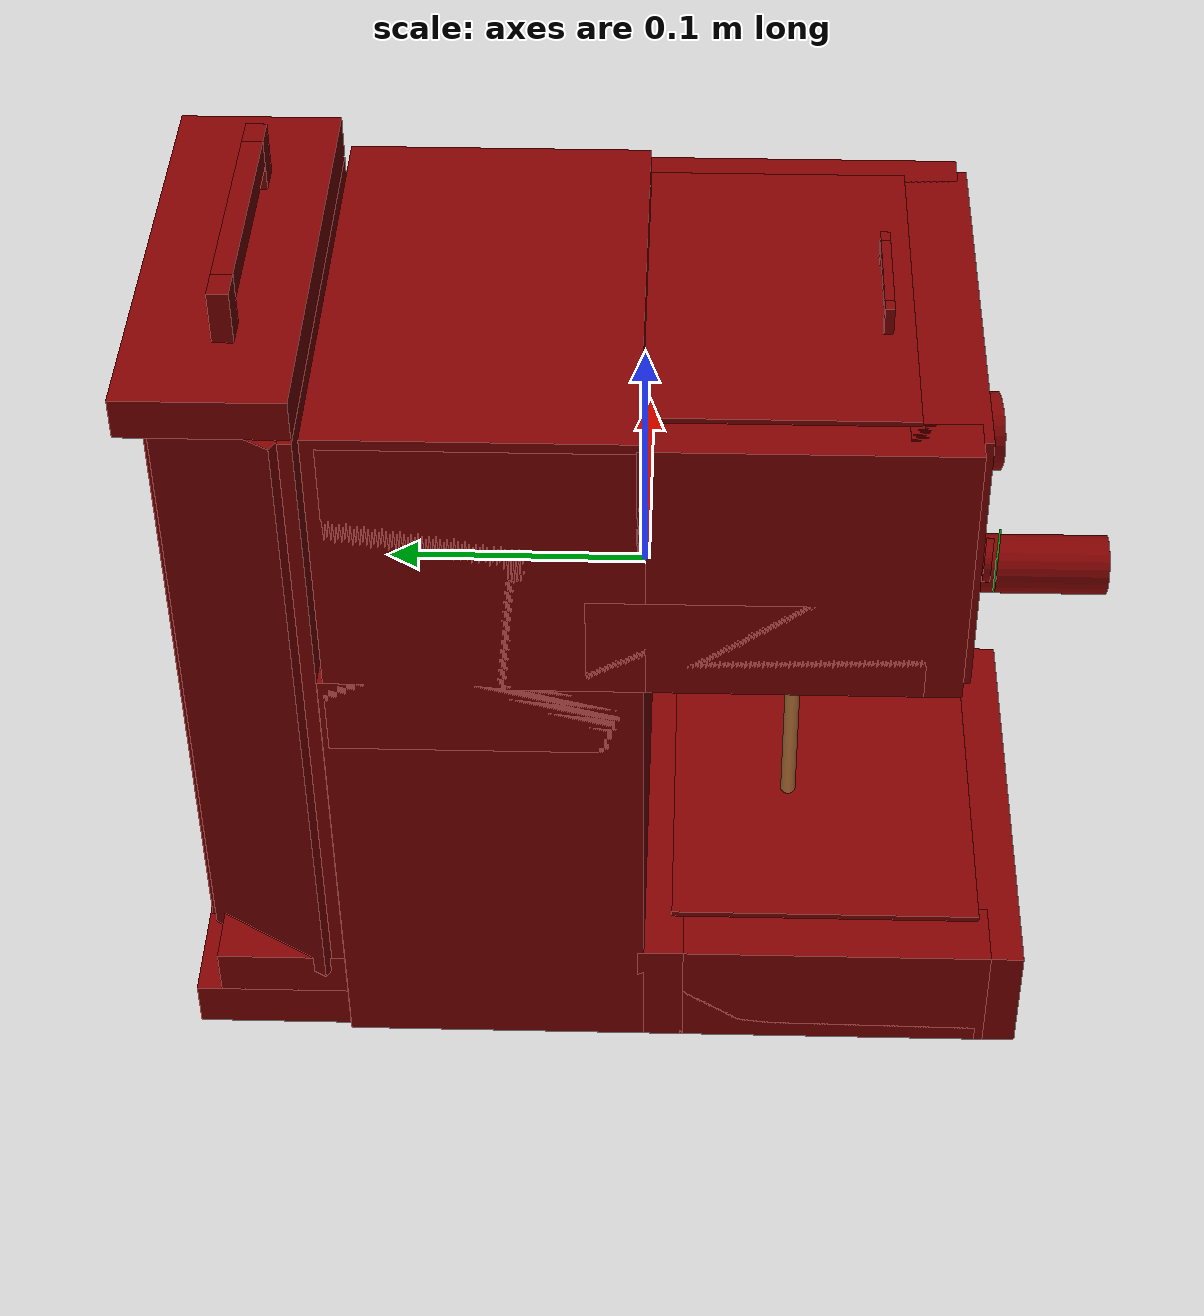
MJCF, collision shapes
<?xml version='1.0' encoding='UTF-8'?>
<mujoco model="model">
  <compiler angle="radian"/>
  <asset>
    <mesh file="visuals/Body001.obj" name="Body001_vis"/>
    <mesh file="visuals/Button001.obj" name="Button001_vis"/>
    <mesh file="visuals/Container001_Clear.obj" name="Container001_Clear_vis"/>
    <mesh file="visuals/Knob001.obj" name="Knob001_vis"/>
    <mesh file="visuals/Lever001.obj" name="Lever001_vis"/>
    <mesh file="visuals/Lid001.obj" name="Lid001_vis"/>
    <mesh file="visuals/Lid002.obj" name="Lid002_vis"/>
    <mesh file="visuals/Lid003.obj" name="Lid003_vis"/>
    <texture file="visuals/T_BC001.png" name="Body001_material" type="2d"/>
    <material name="Body001_material" rgba="1 1 1 1.0" texture="Body001_material" shininess="0.141421377658844" specular="0.3103448502657381"/>
    <texture file="visuals/T_BC001.png" name="Button001_material" type="2d"/>
    <material name="Button001_material" rgba="1 1 1 1.0" texture="Button001_material" shininess="0.141421377658844" specular="0.3103448502657381"/>
    <material name="Container001_Clear_material" rgba="0.5586143136024475 0.5586143136024475 0.5586143136024475 0.21962612867355347" shininess="0.5" specular="0.3103448502657381"/>
    <texture file="visuals/T_BC001.png" name="Lid003_material" type="2d"/>
    <material name="Lid003_material" rgba="1 1 1 1.0" texture="Lid003_material" shininess="0.141421377658844" specular="0.3103448502657381"/>
    <texture file="visuals/T_BC001.png" name="Knob001_material" type="2d"/>
    <material name="Knob001_material" rgba="1 1 1 1.0" texture="Knob001_material" shininess="0.141421377658844" specular="0.3103448502657381"/>
    <texture file="visuals/T_BC001.png" name="Lever001_material" type="2d"/>
    <material name="Lever001_material" rgba="1 1 1 1.0" texture="Lever001_material" shininess="0.141421377658844" specular="0.3103448502657381"/>
    <texture file="visuals/T_BC001.png" name="Lid001_material" type="2d"/>
    <material name="Lid001_material" rgba="1 1 1 1.0" texture="Lid001_material" shininess="0.141421377658844" specular="0.3103448502657381"/>
    <texture file="visuals/T_BC001.png" name="Lid002_material" type="2d"/>
    <material name="Lid002_material" rgba="1 1 1 1.0" texture="Lid002_material" shininess="0.141421377658844" specular="0.3103448502657381"/>
  </asset>
  <default>
    <default class="visual">
      <geom conaffinity="0" contype="0" group="1" type="mesh"/>
    </default>
    <default class="collision">
      <geom group="0" rgba="0.5 0 0 0.5"/>
    </default>
    <default class="spawn">
      <geom group="0" rgba="1 1 1 0.5" contype="0" conaffinity="0"/>
      <site group="0" rgba="1 1 1 0.5"/>
    </default>
    <default class="region">
      <geom group="1" conaffinity="0" contype="0" rgba="0 1 0 0"/>
    </default>
  </default>
  <worldbody>
    <body>
      <body name="object">
        <geom class="collision" type="box" pos="-0.05395617336034775 -0.12982571125030518 0.048479028046131134" size="0.00810594018548727 0.0003842163132503629 0.008105942979454994" quat="0.0690629631280899 0.0 0.0 0.9976122975349426" name="start_button" rgba="0.0 0.5 0 0.5"/>
        <site type="cylinder" rgba="0.8 0.5 0.25 1" size="0.003000000026077032 0.05620431527495384" pos="-0.008333668112754822 -0.05953395366668701 -0.06895400583744049" name="coffee_liquid"/>
        <site rgba="0 0 0 0" size="0.009999999776482582 0.009999999776482582" pos="-0.008333668112754822 -0.05953395366668701 -0.12103447318077087" name="receptacle_place_site"/>
        <geom mesh="Body001_vis" type="mesh" solimp="0.998 0.998 0.001" solref="0.001 1" density="100" friction="0.95 0.3 0.1" class="visual" material="Body001_material"/>
        <geom class="collision" type="box" pos="-0.008078295737504959 0.0570809580385685 0.06270235776901245" size="0.09015553444623947 0.05737150460481644 0.07254129648208618" quat="1.0 0.0 0.0 0.0"/>
        <geom class="collision" type="box" pos="-0.008078303188085556 0.057427313178777695 -0.07301076501607895" size="0.09015549719333649 0.05922892689704895 0.09584990888834" quat="1.0 0.0 0.0 0.0"/>
        <geom class="collision" type="box" pos="-0.00807831808924675 -0.008276864886283875 -0.1445942223072052" size="0.09015550464391708 0.008970573544502258 0.024266468361020088" quat="1.0 0.0 0.0 0.0"/>
        <geom class="collision" type="box" pos="-0.007551848888397217 0.14759129285812378 -0.15889960527420044" size="0.08831890672445297 0.030380483716726303 0.009669988416135311" quat="1.0 0.0 0.0 0.0"/>
        <geom class="collision" type="box" pos="-0.08936472237110138 -0.05779698118567467 0.07670687884092331" size="0.008869145065546036 0.05865433067083359 0.05551895499229431" quat="1.0 0.0 0.0 0.0"/>
        <geom class="collision" type="box" pos="0.07221220433712006 -0.05779698118567467 0.07670687884092331" size="0.009595606476068497 0.05865433067083359 0.05551895499229431" quat="1.0 0.0 0.0 0.0"/>
        <geom class="collision" type="box" pos="-0.008242957293987274 -0.10590178519487381 0.07670687884092331" size="0.08235571533441544 0.014058060012757778 0.05551895499229431" quat="1.0 0.0 0.0 0.0"/>
        <geom class="collision" type="box" pos="-0.008078329265117645 -0.04179186373949051 0.042540960013866425" size="0.09015551954507828 0.060859981924295425 0.021353036165237427" quat="1.0 0.0 0.0 0.0"/>
        <geom class="collision" type="box" pos="-0.00807831808924675 -0.1423206329345703 -0.1445941925048828" size="0.09015550464391708 0.008970573544502258 0.024266455322504044" quat="1.0 0.0 0.0 0.0"/>
        <geom class="collision" type="box" pos="-0.08495204895734787 -0.07695278525352478 -0.1445941925048828" size="0.013281784951686859 0.06151115894317627 0.024266455322504044" quat="1.0 0.0 0.0 0.0"/>
        <geom class="collision" type="box" pos="0.0682300478219986 -0.07695278525352478 -0.1445941925048828" size="0.01400826871395111 0.06151115894317627 0.024266455322504044" quat="1.0 0.0 0.0 0.0"/>
        <geom class="collision" type="box" pos="-0.006153549998998642 -0.031049106270074844 -0.1445941925048828" size="0.056464098393917084 0.003104615490883589 0.02426646277308464" quat="1.0 0.0 0.0 0.0"/>
        <geom class="collision" type="box" pos="-0.006153549998998642 -0.04269916191697121 -0.1445941925048828" size="0.056464098393917084 0.002367970999330282 0.02426646277308464" quat="1.0 0.0 0.0 0.0"/>
        <geom class="collision" type="box" pos="-0.006153549998998642 -0.056778281927108765 -0.1445941925048828" size="0.056464098393917084 0.002367970999330282 0.02426646277308464" quat="1.0 0.0 0.0 0.0"/>
        <geom class="collision" type="box" pos="-0.006153549998998642 -0.06878109276294708 -0.1445941925048828" size="0.056464098393917084 0.002367970999330282 0.02426646277308464" quat="1.0 0.0 0.0 0.0"/>
        <geom class="collision" type="box" pos="-0.006153549998998642 -0.08186037838459015 -0.1445941925048828" size="0.056464098393917084 0.002367970999330282 0.02426646277308464" quat="1.0 0.0 0.0 0.0"/>
        <geom class="collision" type="box" pos="-0.006153549998998642 -0.09431704133749008 -0.1445941925048828" size="0.056464098393917084 0.002367970999330282 0.02426646277308464" quat="1.0 0.0 0.0 0.0"/>
        <geom class="collision" type="box" pos="-0.006153549998998642 -0.10749929398298264 -0.1445941925048828" size="0.056464098393917084 0.002367970999330282 0.02426646277308464" quat="1.0 0.0 0.0 0.0"/>
        <geom class="collision" type="box" pos="-0.006153549998998642 -0.11952522397041321 -0.1445941925048828" size="0.056464098393917084 0.002367970999330282 0.02426646277308464" quat="1.0 0.0 0.0 0.0"/>
        <geom class="collision" type="box" pos="-0.008078329265117645 -0.07563045620918274 -0.15573596954345703" size="0.09015551954507828 0.059354618191719055 0.013124700635671616" quat="1.0 0.0 0.0 0.0"/>
        <geom class="collision" type="box" pos="-0.00807831808924675 0.05362001061439514 0.07612880319356918" size="0.09015550464391708 0.05591287463903427 0.05494086816906929" quat="1.0 0.0 0.0 0.0"/>
        <body name="Button001">
          <joint axis="0.13125598430633545 0.9913485646247864 0.0" pos="-0.05381504446268082 -0.12722638249397278 0.05075997859239578" limited="true" name="Button001_joint" range="0.0 0.002" type="slide" damping="1" frictionloss="1" armature=".01" stiffness="0.05"/>
          <geom mesh="Button001_vis" type="mesh" solimp="0.998 0.998 0.001" solref="0.001 1" density="100" friction="0.95 0.3 0.1" class="visual" material="Button001_material"/>
          <geom class="collision" type="cylinder" pos="-0.05362286418676376 -0.12668311595916748 0.048477429896593094" size="0.008076348342001438 0.001352665713056922" quat="0.7055093050003052 0.7055098414421082 -0.04749995097517967 -0.04749991372227669"/>
        </body>
        <body name="Container001_Clear">
          <joint axis="0.0 0.0 1.0" pos="-0.007428061217069626 0.14716961979866028 -0.007979610934853554" limited="true" name="Container001_Clear_joint" range="0.0 0.07" type="slide" damping="1" frictionloss="1" armature=".01" stiffness="0.05"/>
          <geom mesh="Container001_Clear_vis" type="mesh" solimp="0.998 0.998 0.001" solref="0.001 1" density="100" friction="0.95 0.3 0.1" class="visual" material="Container001_Clear_material"/>
          <geom class="collision" type="box" pos="-0.007551848888397217 0.14256680011749268 -0.13942909240722656" size="0.08831890672445297 0.025355970486998558 0.00975002720952034" quat="1.0 0.0 0.0 0.0"/>
          <geom class="collision" type="box" pos="-0.007551848888397217 0.11974485218524933 -0.00313606858253479" size="0.08831890672445297 0.0025340269785374403 0.1343277245759964" quat="1.0 0.0 0.0 0.0"/>
          <geom class="collision" type="box" pos="-0.004887063056230545 0.1719207763671875 -0.00313606858253479" size="0.061534374952316284 0.0025340269785374403 0.1343277245759964" quat="1.0 0.0 0.0 0.0"/>
          <geom class="collision" type="box" pos="0.06701551377773285 0.14608600735664368 -0.00313606858253479" size="0.02838411182165146 0.0025340283755213022 0.1343277245759964" quat="0.8737752437591553 0.0 0.0 -0.48632997274398804"/>
          <geom class="collision" type="box" pos="-0.08241336047649384 0.14722558856010437 -0.00313606858253479" size="0.02770804986357689 0.0025340283755213022 0.1343277245759964" quat="0.8701595067977905 0.0 0.0 0.49277010560035706"/>
          <body name="Lid003">
            <joint axis="0.0 0.0 1.0" pos="-0.007426884025335312 0.14726349711418152 0.14095455408096313" limited="true" name="Lid003_joint" range="0.0 0.07" type="slide" damping="1" frictionloss="1" armature=".01" stiffness="0.05"/>
            <geom mesh="Lid003_vis" type="mesh" solimp="0.998 0.998 0.001" solref="0.001 1" density="100" friction="0.95 0.3 0.1" class="visual" material="Lid003_material"/>
            <geom class="collision" type="box" pos="-0.007551848888397217 0.14754056930541992 0.1408572793006897" size="0.08831890672445297 0.030329758301377296 0.007791891694068909" quat="1.0 0.0 0.0 0.0"/>
            <geom class="collision" type="box" pos="0.03776684030890465 0.1431882083415985 0.1552615761756897" size="0.005948720034211874 0.0038705335464328527 0.013727921061217785" quat="1.0 0.0 0.0 0.0"/>
            <geom class="collision" type="box" pos="-0.00947607308626175 0.1431882083415985 0.16382864117622375" size="0.04139642417430878 0.0038705335464328527 0.005160872358828783" quat="1.0 0.0 0.0 0.0"/>
            <geom class="collision" type="box" pos="-0.056594789028167725 0.1431882083415985 0.1552615761756897" size="0.005948720034211874 0.0038705335464328527 0.013727921061217785" quat="1.0 0.0 0.0 0.0"/>
          </body>
        </body>
        <body name="Knob001">
          <joint axis="0.08356918394565582 -0.9965019822120667 0.0" pos="0.024893304333090782 -0.1303880512714386 0.04659172147512436" limited="true" name="Knob001_joint" range="0.0 1.0471975511965976" type="hinge" damping="0.05" armature="0.001"/>
          <geom mesh="Knob001_vis" type="mesh" solimp="0.998 0.998 0.001" solref="0.001 1" density="100" friction="0.95 0.3 0.1" class="visual" material="Knob001_material"/>
          <geom class="collision" type="cylinder" pos="0.02467774599790573 -0.13123205304145813 0.0467071607708931" size="0.015413991175591946 0.0047375778667628765" quat="0.7063357830047607 0.706335723400116 0.033012308180332184 0.03301232308149338"/>
        </body>
        <body name="Lever001">
          <joint axis="0.0 0.0 1.0" pos="-0.008327756077051163 -0.05947592109441757 0.004304531961679459" limited="true" name="Lever001_joint" range="-0.6981317007977318 0.6981317007977318" type="hinge" damping="1" frictionloss="1" armature=".01" stiffness="1"/>
          <geom mesh="Lever001_vis" type="mesh" solimp="0.998 0.998 0.001" solref="0.001 1" density="100" friction="0.95 0.3 0.1" class="visual" material="Lever001_material"/>
          <geom class="collision" type="cylinder" pos="-0.00811057910323143 -0.059625294059515 0.018092937767505646" size="0.039288848638534546 0.002439381554722786" quat="1.0 0.0 0.0 0.0"/>
          <geom class="collision" type="cylinder" pos="-0.00811057910323143 -0.059625294059515 0.005531474947929382" size="0.03405679389834404 0.010509352199733257" quat="1.0 0.0 0.0 0.0"/>
          <geom class="collision" type="cylinder" pos="-0.00811057910323143 -0.059625294059515 -0.002696993760764599" size="0.02505088411271572 0.010726703330874443" quat="1.0 0.0 0.0 0.0"/>
          <geom class="collision" type="cylinder" pos="-0.00811057910323143 -0.13513141870498657 0.007593143731355667" size="0.011442313902080059 0.04314994812011719" quat="0.7071068286895752 -0.7071067690849304 0.0 0.0"/>
        </body>
        <body name="Lid001">
          <joint axis="-1.0 0.0 0.0" pos="-0.008323103189468384 -0.0027395151555538177 0.1341392993927002" limited="true" name="Lid001_joint" range="0.0 1.5707963267948966" type="hinge" damping="1" frictionloss="1" armature=".01" stiffness="0.05"/>
          <geom mesh="Lid001_vis" type="mesh" solimp="0.998 0.998 0.001" solref="0.001 1" density="100" friction="0.95 0.3 0.1" class="visual" material="Lid001_material"/>
          <geom class="collision" type="box" pos="-0.008069101721048355 -0.048368364572525024 0.1340712606906891" size="0.07514403760433197 0.04760105907917023 0.0010058670304715633" quat="1.0 0.0 0.0 0.0"/>
          <geom class="collision" type="box" pos="0.011095404624938965 -0.08618861436843872 0.1398143470287323" size="0.002661597914993763 0.0017317681340500712 0.006142196245491505" quat="1.0 0.0 0.0 0.0"/>
          <geom class="collision" type="box" pos="-0.010042190551757812 -0.08618861436843872 0.1436474621295929" size="0.018521739169955254 0.0017317681340500712 0.0023090962786227465" quat="1.0 0.0 0.0 0.0"/>
          <geom class="collision" type="box" pos="-0.03104262799024582 -0.08618861436843872 0.1398143470287323" size="0.002661597914993763 0.0017317681340500712 0.006142196245491505" quat="1.0 0.0 0.0 0.0"/>
        </body>
        <body name="Lid002">
          <joint axis="0.0 0.0 1.0" pos="-0.00710773840546608 -0.07618717104196548 -0.11921076476573944" limited="true" name="Lid002_joint" range="0.0 0.05" type="slide" damping="1" frictionloss="1" armature=".01" stiffness="0.05"/>
          <geom mesh="Lid002_vis" type="mesh" solimp="0.998 0.998 0.001" solref="0.001 1" density="100" friction="0.95 0.3 0.1" class="visual" material="Lid002_material"/>
          <geom class="collision" type="box" pos="-0.0068923793733119965 -0.07356569916009903 -0.11891239881515503" size="0.0716337263584137 0.06110241636633873 0.0012021480360999703" quat="1.0 0.0 0.0 0.0"/>
        </body>
        <geom class="region" name="reg_main" type="box" pos="-0.008323092013597488 0.012622609734535217 0.0" size="0.08991074562072754 0.16534918546676636 0.16886067390441895"/>
      </body>
    </body>
  </worldbody>
  <actuator>
    <motor name="Button001_joint_actuator" joint="Button001_joint" gear="0.5"/>
    <motor name="Container001_Clear_joint_actuator" joint="Container001_Clear_joint" gear="20"/>
    <motor name="Knob001_joint_actuator" joint="Knob001_joint" gear="10"/>
    <motor name="Lever001_joint_actuator" joint="Lever001_joint" gear="10"/>
    <motor name="Lid001_joint_actuator" joint="Lid001_joint" gear="5"/>
    <motor name="Lid002_joint_actuator" joint="Lid002_joint" gear="10"/>
    <motor name="Lid003_joint_actuator" joint="Lid003_joint" gear="5"/>
  </actuator>
</mujoco>
